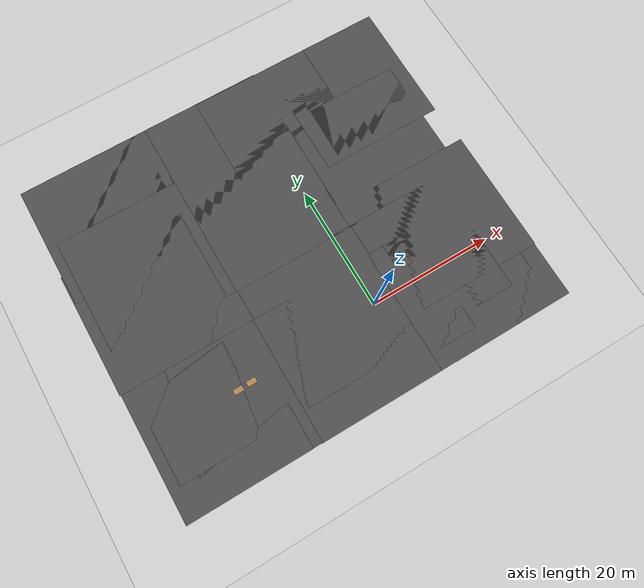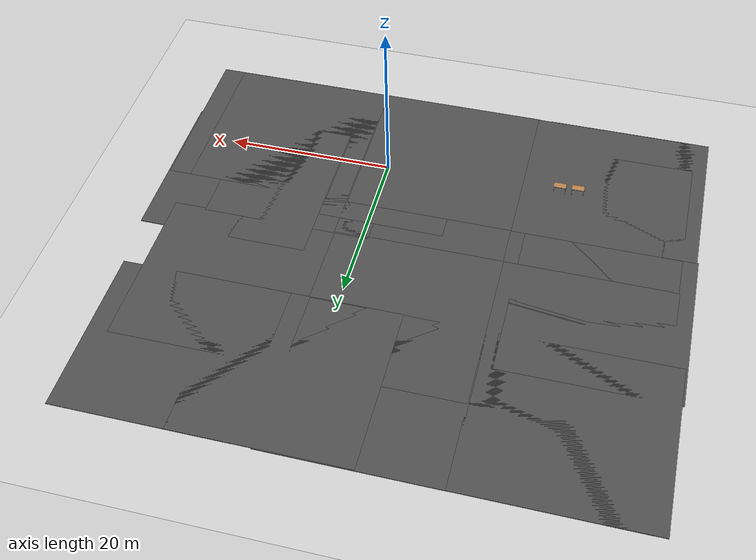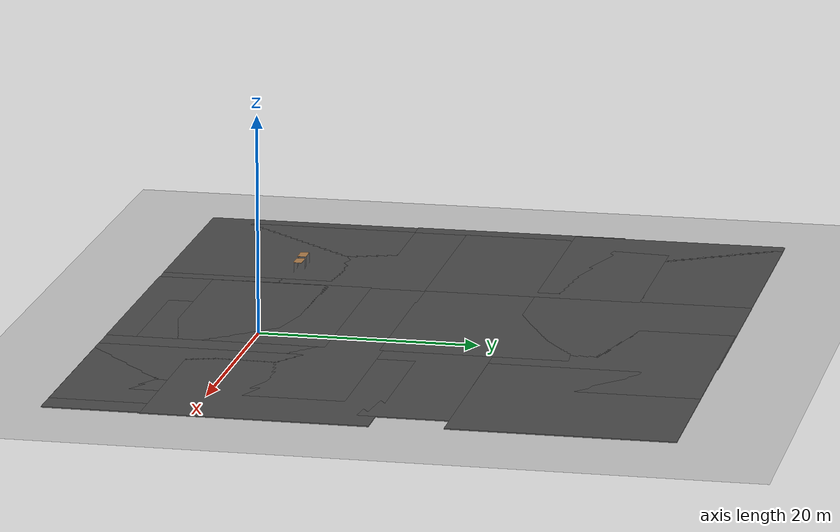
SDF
<sdf version="1.7">
 <world name="default">
  <light name="sun" type="directional">
   <pose>0 0 10 0 -0 0</pose>
   <diffuse>0.8 0.8 0.8 1</diffuse>
   <specular>0.2 0.2 0.2 1</specular>
   <attenuation>
    <range>1000</range>
    <constant>0.9</constant>
    <linear>0.01</linear>
    <quadratic>0.001</quadratic>
   </attenuation>
   <direction>-0.5 0.1 -0.9</direction>
   <spot><inner_angle>0</inner_angle><outer_angle>0</outer_angle><falloff>0</falloff></spot>
  </light>
  <model name="ground_plane">
   <static>1</static>
   <link name="link">
    <collision name="collision">
     <geometry><plane><normal>0 0 1</normal><size>100 100</size></plane></geometry>
     <surface>
      <contact><collide_bitmask>65535</collide_bitmask></contact>
      <friction><ode><mu>100</mu><mu2>50</mu2></ode></friction>
     </surface>
    </collision>
    <visual name="visual">
     <cast_shadows>0</cast_shadows>
     <geometry><plane><normal>0 0 1</normal><size>100 100</size></plane></geometry>
     <material>
      <script><uri>file://media/materials/scripts/gazebo.material</uri><name>Gazebo/Grey</name></script>
     </material>
    </visual>
   </link>
  </model>
  <gravity>0 0 -9.8</gravity>
  <magnetic_field>6e-06 2.3e-05 -4.2e-05</magnetic_field>
  <atmosphere type="adiabatic"/>
  <physics type="ode">
   <max_step_size>0.001</max_step_size>
   <real_time_factor>1</real_time_factor>
   <real_time_update_rate>1000</real_time_update_rate>
  </physics>
  <scene><ambient>0.4 0.4 0.4 1</ambient><background>0.7 0.7 0.7 1</background><shadows>1</shadows></scene>
  <spherical_coordinates>
   <surface_model>EARTH_WGS84</surface_model>
   <latitude_deg>0</latitude_deg>
   <longitude_deg>0</longitude_deg>
   <elevation>0</elevation>
   <heading_deg>0</heading_deg>
  </spherical_coordinates>
  <model name="asphalt_plane">
   <static>1</static>
   <link name="link">
    <collision name="collision"><geometry><box><size>20 20 0.1</size></box></geometry></collision>
    <visual name="visual">
     <cast_shadows>0</cast_shadows>
     <geometry><box><size>20 20 0.1</size></box></geometry>
     <material>
      <script>
       <uri>model://asphalt_plane/materials/scripts</uri>
       <uri>model://asphalt_plane/materials/textures</uri>
       <name>vrc/asphalt</name>
      </script>
     </material>
    </visual>
   </link>
   <pose>-26.4768 1.81709 0 0 -0 0</pose>
  </model>
  <model name="asphalt_plane_0">
   <static>1</static>
   <link name="link">
    <collision name="collision"><geometry><box><size>20 20 0.1</size></box></geometry></collision>
    <visual name="visual">
     <cast_shadows>0</cast_shadows>
     <geometry><box><size>20 20 0.1</size></box></geometry>
     <material>
      <script>
       <uri>model://asphalt_plane/materials/scripts</uri>
       <uri>model://asphalt_plane/materials/textures</uri>
       <name>vrc/asphalt</name>
      </script>
     </material>
    </visual>
   </link>
   <pose>-6.5836 1.8919 0 0 -0 0</pose>
  </model>
  <model name="asphalt_plane_1">
   <static>1</static>
   <link name="link">
    <collision name="collision"><geometry><box><size>20 20 0.1</size></box></geometry></collision>
    <visual name="visual">
     <cast_shadows>0</cast_shadows>
     <geometry><box><size>20 20 0.1</size></box></geometry>
     <material>
      <script>
       <uri>model://asphalt_plane/materials/scripts</uri>
       <uri>model://asphalt_plane/materials/textures</uri>
       <name>vrc/asphalt</name>
      </script>
     </material>
    </visual>
   </link>
   <pose>9.30144 2.09141 0 0 -0 0</pose>
  </model>
  <model name="asphalt_plane_2">
   <static>1</static>
   <link name="link">
    <collision name="collision"><geometry><box><size>20 20 0.1</size></box></geometry></collision>
    <visual name="visual">
     <cast_shadows>0</cast_shadows>
     <geometry><box><size>20 20 0.1</size></box></geometry>
     <material>
      <script>
       <uri>model://asphalt_plane/materials/scripts</uri>
       <uri>model://asphalt_plane/materials/textures</uri>
       <name>vrc/asphalt</name>
      </script>
     </material>
    </visual>
   </link>
   <pose>-26.583 21.7683 0 0 -0 0</pose>
  </model>
  <model name="asphalt_plane_3">
   <static>1</static>
   <link name="link">
    <collision name="collision"><geometry><box><size>20 20 0.1</size></box></geometry></collision>
    <visual name="visual">
     <cast_shadows>0</cast_shadows>
     <geometry><box><size>20 20 0.1</size></box></geometry>
     <material>
      <script>
       <uri>model://asphalt_plane/materials/scripts</uri>
       <uri>model://asphalt_plane/materials/textures</uri>
       <name>vrc/asphalt</name>
      </script>
     </material>
    </visual>
   </link>
   <pose>-6.65014 21.7516 0 0 -0 0</pose>
  </model>
  <model name="asphalt_plane_4">
   <static>1</static>
   <link name="link">
    <collision name="collision"><geometry><box><size>20 20 0.1</size></box></geometry></collision>
    <visual name="visual">
     <cast_shadows>0</cast_shadows>
     <geometry><box><size>20 20 0.1</size></box></geometry>
     <material>
      <script>
       <uri>model://asphalt_plane/materials/scripts</uri>
       <uri>model://asphalt_plane/materials/textures</uri>
       <name>vrc/asphalt</name>
      </script>
     </material>
    </visual>
   </link>
   <pose>13.1321 21.8284 0 0 -0 0</pose>
  </model>
  <model name="asphalt_plane_5">
   <static>1</static>
   <link name="link">
    <collision name="collision"><geometry><box><size>20 20 0.1</size></box></geometry></collision>
    <visual name="visual">
     <cast_shadows>0</cast_shadows>
     <geometry><box><size>20 20 0.1</size></box></geometry>
     <material>
      <script>
       <uri>model://asphalt_plane/materials/scripts</uri>
       <uri>model://asphalt_plane/materials/textures</uri>
       <name>vrc/asphalt</name>
      </script>
     </material>
    </visual>
   </link>
   <pose>15.4297 31.9779 0 0 -0 0</pose>
  </model>
  <model name="asphalt_plane_9">
   <static>1</static>
   <link name="link">
    <collision name="collision"><geometry><box><size>20 20 0.1</size></box></geometry></collision>
    <visual name="visual">
     <cast_shadows>0</cast_shadows>
     <geometry><box><size>20 20 0.1</size></box></geometry>
     <material>
      <script>
       <uri>model://asphalt_plane/materials/scripts</uri>
       <uri>model://asphalt_plane/materials/textures</uri>
       <name>vrc/asphalt</name>
      </script>
     </material>
    </visual>
   </link>
   <pose>1.01672 -0.40772 0 0 -0 0</pose>
  </model>
  <model name="asphalt_plane_10">
   <static>1</static>
   <link name="link">
    <collision name="collision"><geometry><box><size>20 20 0.1</size></box></geometry></collision>
    <visual name="visual">
     <cast_shadows>0</cast_shadows>
     <geometry><box><size>20 20 0.1</size></box></geometry>
     <material>
      <script>
       <uri>model://asphalt_plane/materials/scripts</uri>
       <uri>model://asphalt_plane/materials/textures</uri>
       <name>vrc/asphalt</name>
      </script>
     </material>
    </visual>
   </link>
   <pose>-26.6151 -3.11844 0 0 -0 0</pose>
  </model>
  <model name="asphalt_plane_11">
   <static>1</static>
   <link name="link">
    <collision name="collision"><geometry><box><size>20 20 0.1</size></box></geometry></collision>
    <visual name="visual">
     <cast_shadows>0</cast_shadows>
     <geometry><box><size>20 20 0.1</size></box></geometry>
     <material>
      <script>
       <uri>model://asphalt_plane/materials/scripts</uri>
       <uri>model://asphalt_plane/materials/textures</uri>
       <name>vrc/asphalt</name>
      </script>
     </material>
    </visual>
   </link>
   <pose>-6.71237 -3.17818 0 0 -0 0</pose>
  </model>
  <model name="asphalt_plane_12">
   <static>1</static>
   <link name="link">
    <collision name="collision"><geometry><box><size>20 20 0.1</size></box></geometry></collision>
    <visual name="visual">
     <cast_shadows>0</cast_shadows>
     <geometry><box><size>20 20 0.1</size></box></geometry>
     <material>
      <script>
       <uri>model://asphalt_plane/materials/scripts</uri>
       <uri>model://asphalt_plane/materials/textures</uri>
       <name>vrc/asphalt</name>
      </script>
     </material>
    </visual>
   </link>
   <pose>13.239 -3.15588 0 0 -0 0</pose>
  </model>
  <model name="asphalt_plane_14">
   <static>1</static>
   <link name="link">
    <collision name="collision"><geometry><box><size>20 20 0.1</size></box></geometry></collision>
    <visual name="visual">
     <cast_shadows>0</cast_shadows>
     <geometry><box><size>20 20 0.1</size></box></geometry>
     <material>
      <script>
       <uri>model://asphalt_plane/materials/scripts</uri>
       <uri>model://asphalt_plane/materials/textures</uri>
       <name>vrc/asphalt</name>
      </script>
     </material>
    </visual>
   </link>
   <pose>-26.5785 32.0369 0 0 -0 0</pose>
  </model>
  <model name="asphalt_plane_15">
   <static>1</static>
   <link name="link">
    <collision name="collision"><geometry><box><size>20 20 0.1</size></box></geometry></collision>
    <visual name="visual">
     <cast_shadows>0</cast_shadows>
     <geometry><box><size>20 20 0.1</size></box></geometry>
     <material>
      <script>
       <uri>model://asphalt_plane/materials/scripts</uri>
       <uri>model://asphalt_plane/materials/textures</uri>
       <name>vrc/asphalt</name>
      </script>
     </material>
    </visual>
   </link>
   <pose>-6.77978 32.0574 0 0 -0 0</pose>
  </model>
  <model name="asphalt_plane_16">
   <static>1</static>
   <link name="link">
    <collision name="collision"><geometry><box><size>20 20 0.1</size></box></geometry></collision>
    <visual name="visual">
     <cast_shadows>0</cast_shadows>
     <geometry><box><size>20 20 0.1</size></box></geometry>
     <material>
      <script>
       <uri>model://asphalt_plane/materials/scripts</uri>
       <uri>model://asphalt_plane/materials/textures</uri>
       <name>vrc/asphalt</name>
      </script>
     </material>
    </visual>
   </link>
   <pose>2.53821 31.9617 0 0 -0 0</pose>
  </model>
  <model name="asphalt_plane_5_clone">
   <static>1</static>
   <link name="link">
    <collision name="collision"><geometry><box><size>20 20 0.1</size></box></geometry></collision>
    <visual name="visual">
     <cast_shadows>0</cast_shadows>
     <geometry><box><size>20 20 0.1</size></box></geometry>
     <material>
      <script>
       <uri>model://asphalt_plane/materials/scripts</uri>
       <uri>model://asphalt_plane/materials/textures</uri>
       <name>vrc/asphalt</name>
      </script>
     </material>
    </visual>
   </link>
   <pose>16.0368 5.58494 0 0 -0 0</pose>
  </model>
  <model name="asphalt_plane_5_clone_0">
   <static>1</static>
   <link name="link">
    <collision name="collision"><geometry><box><size>20 20 0.1</size></box></geometry></collision>
    <visual name="visual">
     <cast_shadows>0</cast_shadows>
     <geometry><box><size>20 20 0.1</size></box></geometry>
     <material>
      <script>
       <uri>model://asphalt_plane/materials/scripts</uri>
       <uri>model://asphalt_plane/materials/textures</uri>
       <name>vrc/asphalt</name>
      </script>
     </material>
    </visual>
   </link>
   <pose>15.9026 -3.17684 0 0 -0 0</pose>
  </model>
  <model name="asphalt_plane_5_clone_1">
   <static>1</static>
   <link name="link">
    <collision name="collision"><geometry><box><size>20 20 0.1</size></box></geometry></collision>
    <visual name="visual">
     <cast_shadows>0</cast_shadows>
     <geometry><box><size>20 20 0.1</size></box></geometry>
     <material>
      <script>
       <uri>model://asphalt_plane/materials/scripts</uri>
       <uri>model://asphalt_plane/materials/textures</uri>
       <name>vrc/asphalt</name>
      </script>
     </material>
    </visual>
   </link>
   <pose>-28.1174 -3.15927 0 0 -0 0</pose>
  </model>
  <model name="asphalt_plane_5_clone_2">
   <static>1</static>
   <link name="link">
    <collision name="collision"><geometry><box><size>20 20 0.1</size></box></geometry></collision>
    <visual name="visual">
     <cast_shadows>0</cast_shadows>
     <geometry><box><size>20 20 0.1</size></box></geometry>
     <material>
      <script>
       <uri>model://asphalt_plane/materials/scripts</uri>
       <uri>model://asphalt_plane/materials/textures</uri>
       <name>vrc/asphalt</name>
      </script>
     </material>
    </visual>
   </link>
   <pose>-28.2788 16.7897 0 0 -0 0</pose>
  </model>
  <model name="asphalt_plane_5_clone_3">
   <static>1</static>
   <link name="link">
    <collision name="collision"><geometry><box><size>20 20 0.1</size></box></geometry></collision>
    <visual name="visual">
     <cast_shadows>0</cast_shadows>
     <geometry><box><size>20 20 0.1</size></box></geometry>
     <material>
      <script>
       <uri>model://asphalt_plane/materials/scripts</uri>
       <uri>model://asphalt_plane/materials/textures</uri>
       <name>vrc/asphalt</name>
      </script>
     </material>
    </visual>
   </link>
   <pose>-28.0517 32.0217 0 0 -0 0</pose>
  </model>
  <model name="table">
   <static>1</static>
   <link name="link">
    <collision name="surface">
     <pose>0 0 1 0 -0 0</pose>
     <geometry><box><size>1.5 0.8 0.03</size></box></geometry>
     <surface><friction><ode><mu>0.6</mu><mu2>0.6</mu2></ode></friction></surface>
    </collision>
    <visual name="visual1">
     <pose>0 0 1 0 -0 0</pose>
     <geometry><box><size>1.5 0.8 0.03</size></box></geometry>
     <material>
      <script><uri>file://media/materials/scripts/gazebo.material</uri><name>Gazebo/Wood</name></script>
     </material>
    </visual>
    <collision name="front_left_leg">
     <pose>0.68 0.38 0.5 0 -0 0</pose>
     <geometry><cylinder><radius>0.02</radius><length>1</length></cylinder></geometry>
    </collision>
    <visual name="front_left_leg">
     <pose>0.68 0.38 0.5 0 -0 0</pose>
     <geometry><cylinder><radius>0.02</radius><length>1</length></cylinder></geometry>
     <material>
      <script><uri>file://media/materials/scripts/gazebo.material</uri><name>Gazebo/Grey</name></script>
     </material>
    </visual>
    <collision name="front_right_leg">
     <pose>0.68 -0.38 0.5 0 -0 0</pose>
     <geometry><cylinder><radius>0.02</radius><length>1</length></cylinder></geometry>
    </collision>
    <visual name="front_right_leg">
     <pose>0.68 -0.38 0.5 0 -0 0</pose>
     <geometry><cylinder><radius>0.02</radius><length>1</length></cylinder></geometry>
     <material>
      <script><uri>file://media/materials/scripts/gazebo.material</uri><name>Gazebo/Grey</name></script>
     </material>
    </visual>
    <collision name="back_right_leg">
     <pose>-0.68 -0.38 0.5 0 -0 0</pose>
     <geometry><cylinder><radius>0.02</radius><length>1</length></cylinder></geometry>
    </collision>
    <visual name="back_right_leg">
     <pose>-0.68 -0.38 0.5 0 -0 0</pose>
     <geometry><cylinder><radius>0.02</radius><length>1</length></cylinder></geometry>
     <material>
      <script><uri>file://media/materials/scripts/gazebo.material</uri><name>Gazebo/Grey</name></script>
     </material>
    </visual>
    <collision name="back_left_leg">
     <pose>-0.68 0.38 0.5 0 -0 0</pose>
     <geometry><cylinder><radius>0.02</radius><length>1</length></cylinder></geometry>
    </collision>
    <visual name="back_left_leg">
     <pose>-0.68 0.38 0.5 0 -0 0</pose>
     <geometry><cylinder><radius>0.02</radius><length>1</length></cylinder></geometry>
     <material>
      <script><uri>file://media/materials/scripts/gazebo.material</uri><name>Gazebo/Grey</name></script>
     </material>
    </visual>
   </link>
   <pose>-23.2903 -1.03893 0 0 -0 0</pose>
  </model>
  <model name="table_0">
   <static>1</static>
   <link name="link">
    <collision name="surface">
     <pose>0 0 1 0 -0 0</pose>
     <geometry><box><size>1.5 0.8 0.03</size></box></geometry>
     <surface><friction><ode><mu>0.6</mu><mu2>0.6</mu2></ode></friction></surface>
    </collision>
    <visual name="visual1">
     <pose>0 0 1 0 -0 0</pose>
     <geometry><box><size>1.5 0.8 0.03</size></box></geometry>
     <material>
      <script><uri>file://media/materials/scripts/gazebo.material</uri><name>Gazebo/Wood</name></script>
     </material>
    </visual>
    <collision name="front_left_leg">
     <pose>0.68 0.38 0.5 0 -0 0</pose>
     <geometry><cylinder><radius>0.02</radius><length>1</length></cylinder></geometry>
    </collision>
    <visual name="front_left_leg">
     <pose>0.68 0.38 0.5 0 -0 0</pose>
     <geometry><cylinder><radius>0.02</radius><length>1</length></cylinder></geometry>
     <material>
      <script><uri>file://media/materials/scripts/gazebo.material</uri><name>Gazebo/Grey</name></script>
     </material>
    </visual>
    <collision name="front_right_leg">
     <pose>0.68 -0.38 0.5 0 -0 0</pose>
     <geometry><cylinder><radius>0.02</radius><length>1</length></cylinder></geometry>
    </collision>
    <visual name="front_right_leg">
     <pose>0.68 -0.38 0.5 0 -0 0</pose>
     <geometry><cylinder><radius>0.02</radius><length>1</length></cylinder></geometry>
     <material>
      <script><uri>file://media/materials/scripts/gazebo.material</uri><name>Gazebo/Grey</name></script>
     </material>
    </visual>
    <collision name="back_right_leg">
     <pose>-0.68 -0.38 0.5 0 -0 0</pose>
     <geometry><cylinder><radius>0.02</radius><length>1</length></cylinder></geometry>
    </collision>
    <visual name="back_right_leg">
     <pose>-0.68 -0.38 0.5 0 -0 0</pose>
     <geometry><cylinder><radius>0.02</radius><length>1</length></cylinder></geometry>
     <material>
      <script><uri>file://media/materials/scripts/gazebo.material</uri><name>Gazebo/Grey</name></script>
     </material>
    </visual>
    <collision name="back_left_leg">
     <pose>-0.68 0.38 0.5 0 -0 0</pose>
     <geometry><cylinder><radius>0.02</radius><length>1</length></cylinder></geometry>
    </collision>
    <visual name="back_left_leg">
     <pose>-0.68 0.38 0.5 0 -0 0</pose>
     <geometry><cylinder><radius>0.02</radius><length>1</length></cylinder></geometry>
     <material>
      <script><uri>file://media/materials/scripts/gazebo.material</uri><name>Gazebo/Grey</name></script>
     </material>
    </visual>
   </link>
   <pose>-21.1122 -0.954571 0 0 -0 0</pose>
  </model>
 </world>
</sdf>
